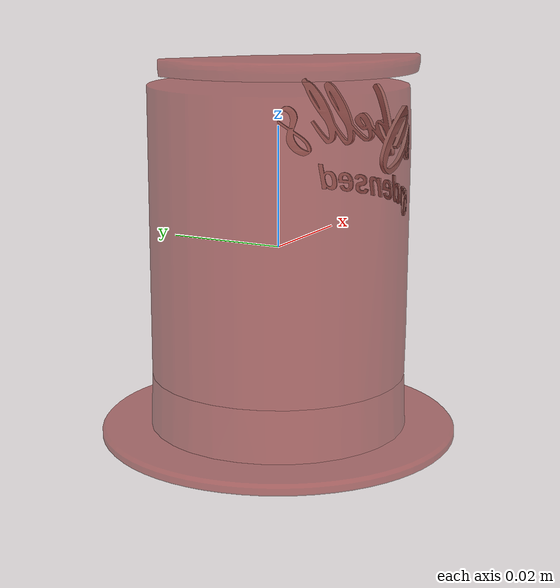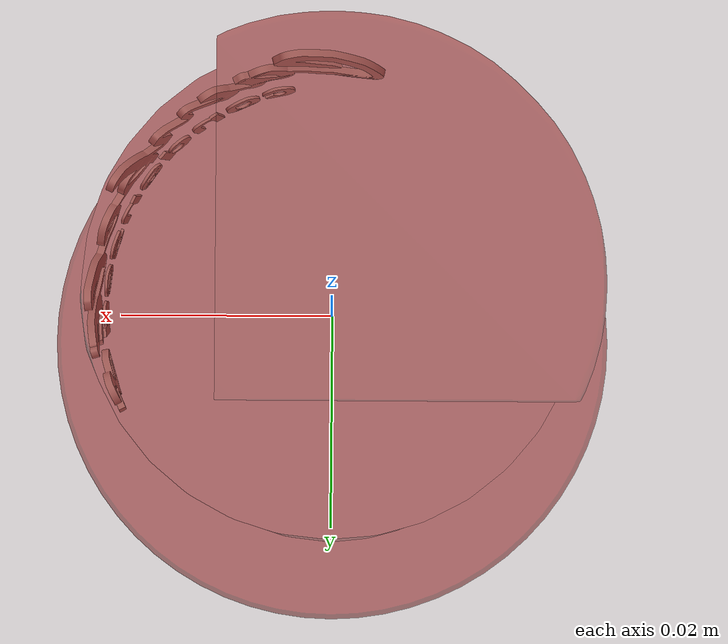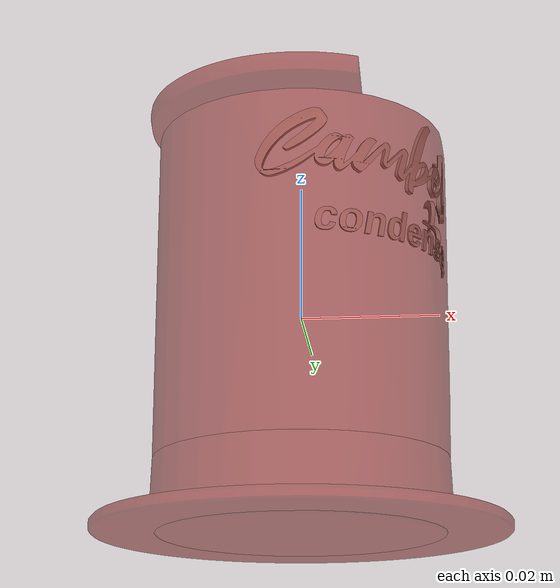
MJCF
<?xml version='1.0' encoding='utf-8'?>
<mujoco model="canned_food_7">
  <asset>
    <mesh file="visual/model_normalized_0.obj" name="model_normalized_0_vis" scale="0.06299999999999996 0.06299999999999996 0.06299999999999996" refquat="1.0 0.0 0.0 0.0" />
    <texture type="2d" name="image0" file="visual/image0.png" />
    <material name="01___Default" texture="image0" specular="0.5" shininess="0.25" />
    <mesh file="collision/collision_mesh_collision_0.obj" name="canned_collision_mesh_0" scale="0.06299999999999996 0.06299999999999996 0.06299999999999996" refquat="1.0 0.0 0.0 0.0" />
    <mesh file="collision/collision_mesh_collision_1.obj" name="canned_collision_mesh_1" scale="0.06299999999999996 0.06299999999999996 0.06299999999999996" refquat="1.0 0.0 0.0 0.0" />
    <mesh file="collision/collision_mesh_collision_2.obj" name="canned_collision_mesh_2" scale="0.06299999999999996 0.06299999999999996 0.06299999999999996" refquat="1.0 0.0 0.0 0.0" />
    <mesh file="collision/collision_mesh_collision_3.obj" name="canned_collision_mesh_3" scale="0.06299999999999996 0.06299999999999996 0.06299999999999996" refquat="1.0 0.0 0.0 0.0" />
  </asset>
  <default>
    <default class="region">
      <geom group="1" conaffinity="0" contype="0" rgba="0 1 0 0" mass="0" />
    </default>
    <default class="collision">
      <geom group="0" rgba="0.5 0 0 0.5" density="1681.968436525" />
    </default>
  </default>
  <worldbody>
    <body>
      <body name="object">
        <geom solimp="0.998 0.998 0.001" solref="0.001 1" density="168.196843652" friction="0.95 0.3 0.1" type="mesh" mesh="model_normalized_0_vis" conaffinity="0" contype="0" group="1" material="01___Default" />
        <geom class="region" name="reg_bbox" type="box" pos="0.0 0.0 0.0" size="0.029603287979999983 0.029603287979999983 0.03149999999999998" />
        <geom mesh="canned_collision_mesh_0" type="mesh" class="collision" />
        <geom mesh="canned_collision_mesh_1" type="mesh" class="collision" />
        <geom mesh="canned_collision_mesh_2" type="mesh" class="collision" />
        <geom mesh="canned_collision_mesh_3" type="mesh" class="collision" />
      </body>
    </body>
  </worldbody>
</mujoco>
